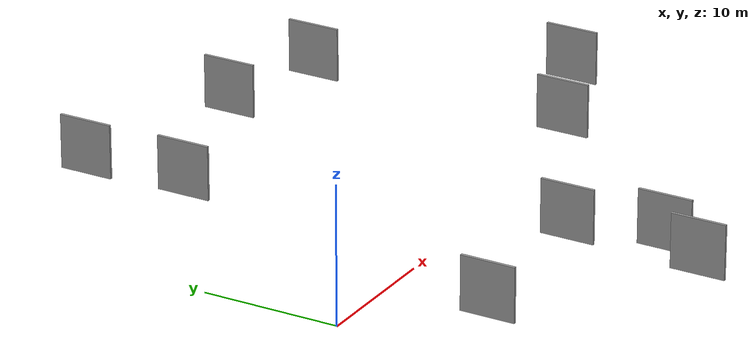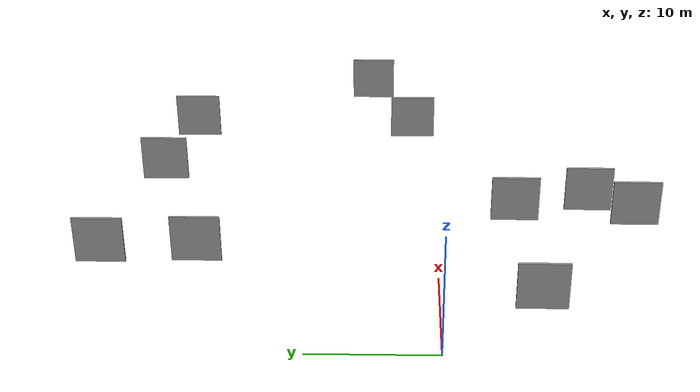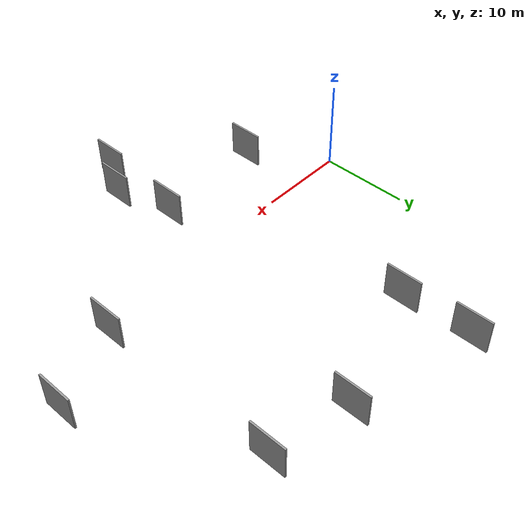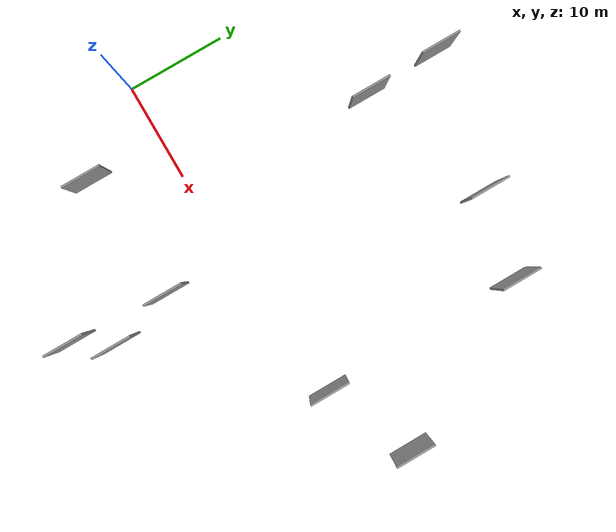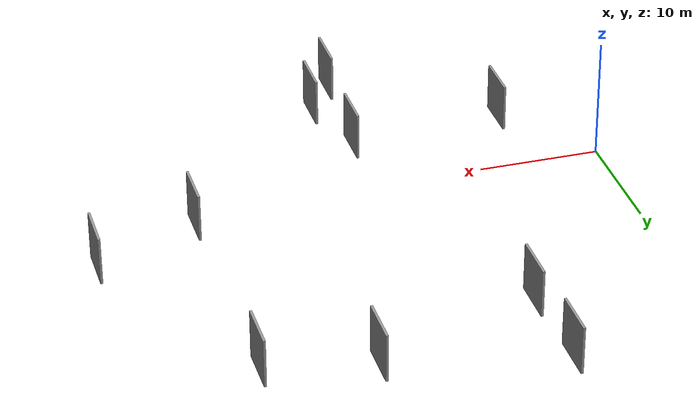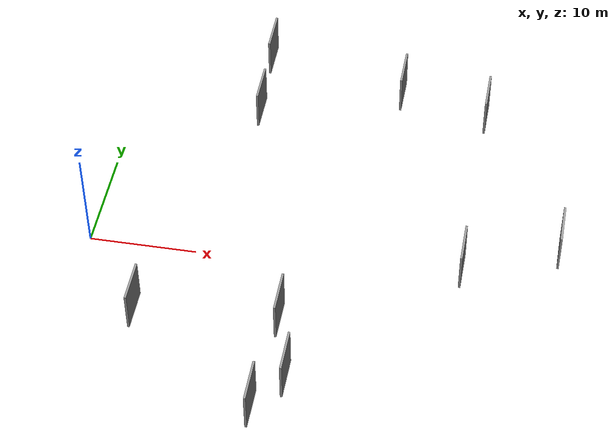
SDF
<sdf version="1.6">
 <world name="default">
  <scene>
   <sky><clouds><speed>12</speed></clouds></sky>
   <ambient>0.4 0.4 0.4 1</ambient>
   <background>0.7 0.7 0.7 1</background>
   <shadows>1</shadows>
  </scene>
  <gravity>0 0 -9.8066</gravity>
  <magnetic_field>6e-06 2.3e-05 -4.2e-05</magnetic_field>
  <physics default="0" name="default_physics" type="ode">
   <ode>
    <solver>
     <type>quick</type>
     <iters>10</iters>
     <sor>1.0</sor>
     <use_dynamic_moi_rescaling>0</use_dynamic_moi_rescaling>
    </solver>
    <constraints>
     <cfm>0</cfm>
     <erp>0.2</erp>
     <contact_max_correcting_vel>100</contact_max_correcting_vel>
     <contact_surface_layer>0.001</contact_surface_layer>
    </constraints>
   </ode>
   <max_step_size>0.004</max_step_size>
   <real_time_factor>1</real_time_factor>
   <real_time_update_rate>250</real_time_update_rate>
  </physics>
  <light name="sun" type="directional">
   <pose>0 0 10 0 0 0</pose>
   <diffuse>0.8 0.8 0.8 1</diffuse>
   <specular>0.2 0.2 0.2 1</specular>
   <attenuation>
    <range>1000</range>
    <constant>0.9</constant>
    <linear>0.01</linear>
    <quadratic>0.001</quadratic>
   </attenuation>
   <direction>-0.5 0.1 -0.9</direction>
  </light>
  <model name="grey_wall_1">
   <static>1</static>
   <pose>43.0023 5.7324 0.0 0.000000 0.000000 1.570796</pose>
   <link name="link">
    <pose>0 0 2.00 0 0 0</pose>
    <collision name="collision"><geometry><box><size>4.00 0.2 4.00</size></box></geometry></collision>
    <visual name="visual">
     <cast_shadows>0</cast_shadows>
     <geometry><box><size>4.00 0.2 4.00</size></box></geometry>
     <material>
      <script>
       <uri>model://grey_wall/materials/scripts</uri>
       <uri>model://grey_wall/materials/textures</uri>
       <name>vrc/grey_wall</name>
      </script>
     </material>
    </visual>
   </link>
  </model>
  <model name="grey_wall_2">
   <static>1</static>
   <pose>34.3460 22.0844 0.0 0.000000 0.000000 1.570796</pose>
   <link name="link">
    <pose>0 0 2.00 0 0 0</pose>
    <collision name="collision"><geometry><box><size>4.00 0.2 4.00</size></box></geometry></collision>
    <visual name="visual">
     <cast_shadows>0</cast_shadows>
     <geometry><box><size>4.00 0.2 4.00</size></box></geometry>
     <material>
      <script>
       <uri>model://grey_wall/materials/scripts</uri>
       <uri>model://grey_wall/materials/textures</uri>
       <name>vrc/grey_wall</name>
      </script>
     </material>
    </visual>
   </link>
  </model>
  <model name="grey_wall_3">
   <static>1</static>
   <pose>18.5591 -16.5934 0.0 0.000000 0.000000 1.570796</pose>
   <link name="link">
    <pose>0 0 2.00 0 0 0</pose>
    <collision name="collision"><geometry><box><size>4.00 0.2 4.00</size></box></geometry></collision>
    <visual name="visual">
     <cast_shadows>0</cast_shadows>
     <geometry><box><size>4.00 0.2 4.00</size></box></geometry>
     <material>
      <script>
       <uri>model://grey_wall/materials/scripts</uri>
       <uri>model://grey_wall/materials/textures</uri>
       <name>vrc/grey_wall</name>
      </script>
     </material>
    </visual>
   </link>
  </model>
  <model name="grey_wall_4">
   <static>1</static>
   <pose>25.8021 23.9234 0.0 0.000000 0.000000 1.570796</pose>
   <link name="link">
    <pose>0 0 2.00 0 0 0</pose>
    <collision name="collision"><geometry><box><size>4.00 0.2 4.00</size></box></geometry></collision>
    <visual name="visual">
     <cast_shadows>0</cast_shadows>
     <geometry><box><size>4.00 0.2 4.00</size></box></geometry>
     <material>
      <script>
       <uri>model://grey_wall/materials/scripts</uri>
       <uri>model://grey_wall/materials/textures</uri>
       <name>vrc/grey_wall</name>
      </script>
     </material>
    </visual>
   </link>
  </model>
  <model name="grey_wall_5">
   <static>1</static>
   <pose>12.0278 26.9930 0.0 0.000000 0.000000 1.570796</pose>
   <link name="link">
    <pose>0 0 2.00 0 0 0</pose>
    <collision name="collision"><geometry><box><size>4.00 0.2 4.00</size></box></geometry></collision>
    <visual name="visual">
     <cast_shadows>0</cast_shadows>
     <geometry><box><size>4.00 0.2 4.00</size></box></geometry>
     <material>
      <script>
       <uri>model://grey_wall/materials/scripts</uri>
       <uri>model://grey_wall/materials/textures</uri>
       <name>vrc/grey_wall</name>
      </script>
     </material>
    </visual>
   </link>
  </model>
  <model name="grey_wall_6">
   <static>1</static>
   <pose>20.9036 -12.9548 0.0 0.000000 0.000000 1.570796</pose>
   <link name="link">
    <pose>0 0 2.00 0 0 0</pose>
    <collision name="collision"><geometry><box><size>4.00 0.2 4.00</size></box></geometry></collision>
    <visual name="visual">
     <cast_shadows>0</cast_shadows>
     <geometry><box><size>4.00 0.2 4.00</size></box></geometry>
     <material>
      <script>
       <uri>model://grey_wall/materials/scripts</uri>
       <uri>model://grey_wall/materials/textures</uri>
       <name>vrc/grey_wall</name>
      </script>
     </material>
    </visual>
   </link>
  </model>
  <model name="grey_wall_7">
   <static>1</static>
   <pose>34.4218 1.9102 0.0 0.000000 0.000000 1.570796</pose>
   <link name="link">
    <pose>0 0 2.00 0 0 0</pose>
    <collision name="collision"><geometry><box><size>4.00 0.2 4.00</size></box></geometry></collision>
    <visual name="visual">
     <cast_shadows>0</cast_shadows>
     <geometry><box><size>4.00 0.2 4.00</size></box></geometry>
     <material>
      <script>
       <uri>model://grey_wall/materials/scripts</uri>
       <uri>model://grey_wall/materials/textures</uri>
       <name>vrc/grey_wall</name>
      </script>
     </material>
    </visual>
   </link>
  </model>
  <model name="grey_wall_8">
   <static>1</static>
   <pose>19.1299 -6.5853 0.0 0.000000 0.000000 1.570796</pose>
   <link name="link">
    <pose>0 0 2.00 0 0 0</pose>
    <collision name="collision"><geometry><box><size>4.00 0.2 4.00</size></box></geometry></collision>
    <visual name="visual">
     <cast_shadows>0</cast_shadows>
     <geometry><box><size>4.00 0.2 4.00</size></box></geometry>
     <material>
      <script>
       <uri>model://grey_wall/materials/scripts</uri>
       <uri>model://grey_wall/materials/textures</uri>
       <name>vrc/grey_wall</name>
      </script>
     </material>
    </visual>
   </link>
  </model>
  <model name="grey_wall_9">
   <static>1</static>
   <pose>12.3379 19.3283 0.0 0.000000 0.000000 1.570796</pose>
   <link name="link">
    <pose>0 0 2.00 0 0 0</pose>
    <collision name="collision"><geometry><box><size>4.00 0.2 4.00</size></box></geometry></collision>
    <visual name="visual">
     <cast_shadows>0</cast_shadows>
     <geometry><box><size>4.00 0.2 4.00</size></box></geometry>
     <material>
      <script>
       <uri>model://grey_wall/materials/scripts</uri>
       <uri>model://grey_wall/materials/textures</uri>
       <name>vrc/grey_wall</name>
      </script>
     </material>
    </visual>
   </link>
  </model>
  <model name="grey_wall_10">
   <static>1</static>
   <pose>6.0848 -7.6989 0.0 0.000000 0.000000 1.570796</pose>
   <link name="link">
    <pose>0 0 2.00 0 0 0</pose>
    <collision name="collision"><geometry><box><size>4.00 0.2 4.00</size></box></geometry></collision>
    <visual name="visual">
     <cast_shadows>0</cast_shadows>
     <geometry><box><size>4.00 0.2 4.00</size></box></geometry>
     <material>
      <script>
       <uri>model://grey_wall/materials/scripts</uri>
       <uri>model://grey_wall/materials/textures</uri>
       <name>vrc/grey_wall</name>
      </script>
     </material>
    </visual>
   </link>
  </model>
 </world>
</sdf>
